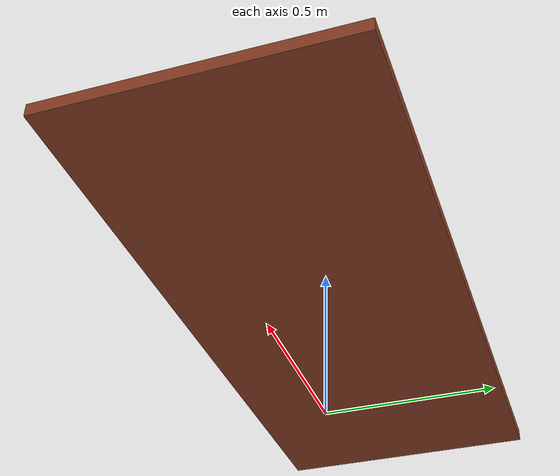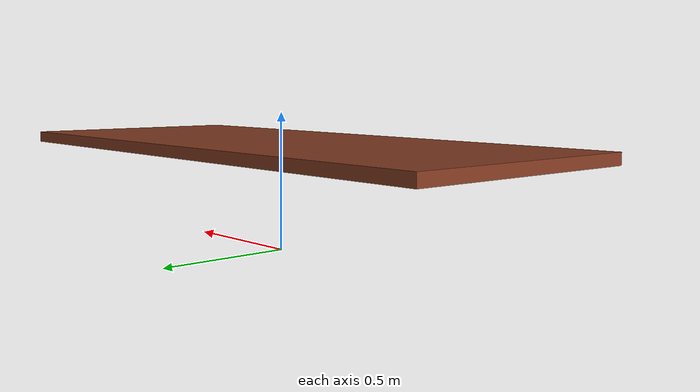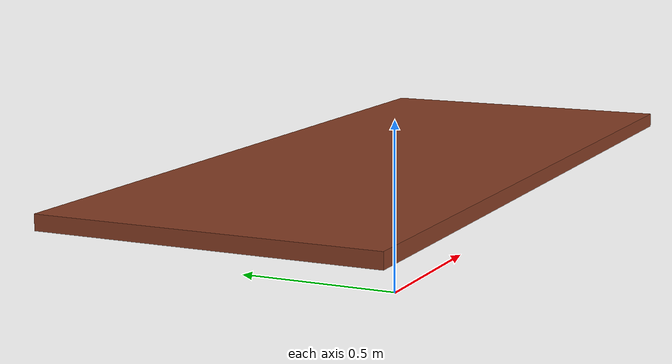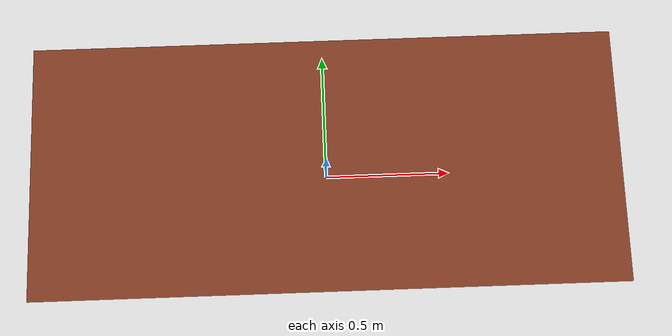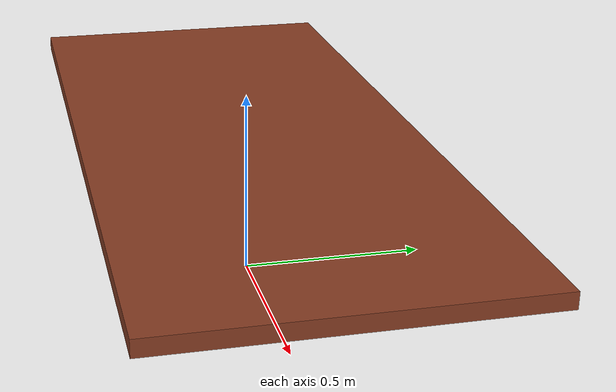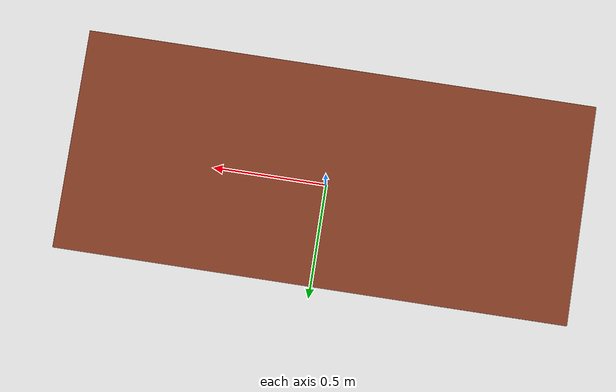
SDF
<?xml version="1.0"?>
<sdf version="1.7">
  <model name="table_top">
    <link name="table_top_link">
      <visual name="visual">
        <pose>0 0 0.38 0 0 0</pose>
        <geometry>
          <box>
            <size>2.1 0.9 0.041</size>
          </box>
        </geometry>
        <material>
         <diffuse>0.53 0.24 0.14 1.0</diffuse>
        </material>
      </visual>
    </link>
  </model>
</sdf>
